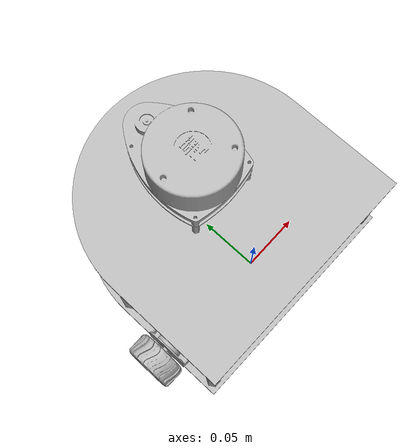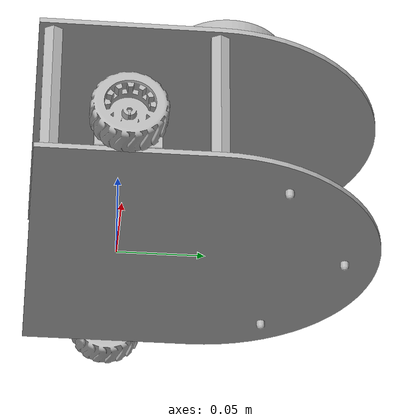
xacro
<?xml version="1.0" ?>
<robot name="difdrv1" xmlns:xacro="http://www.ros.org/wiki/xacro">

<xacro:include filename="$(find difdrv1_description)/urdf/materials.xacro" />
<xacro:include filename="$(find difdrv1_description)/urdf/difdrv1.trans" />
<xacro:include filename="$(find difdrv1_description)/urdf/difdrv1.gazebo" />
<link name="base_link">
  <inertial>
    <origin rpy="0 0 0" xyz="7.502486026261859e-16 0.040808268425742804 0.006491713565837926"/>
    <mass value="0.12755476015513142"/>
    <inertia ixx="0.000368" ixy="-0.0" ixz="0.0" iyy="0.000379" iyz="0.0" izz="0.000746"/>
  </inertial>
  <visual>
    <origin rpy="0 0 0" xyz="0 0 0"/>
    <geometry>
      <mesh filename="package://difdrv1_description/meshes/base_link.stl" scale="0.001 0.001 0.001"/>
    </geometry>
    <material name="silver"/>
  </visual>
  <collision>
    <origin rpy="0 0 0" xyz="0 0 0"/>
    <geometry>
      <mesh filename="package://difdrv1_description/meshes/base_link.stl" scale="0.001 0.001 0.001"/>
    </geometry>
  </collision>
</link>

<link name="stand1_1">
  <inertial>
    <origin rpy="0 0 0" xyz="-1.3877787807814457e-17 2.0816681711721685e-17 0.04000000000000001"/>
    <mass value="0.05882044717802503"/>
    <inertia ixx="3.2e-05" ixy="0.0" ixz="0.0" iyy="3.2e-05" iyz="0.0" izz="1e-06"/>
  </inertial>
  <visual>
    <origin rpy="0 0 0" xyz="0.092 0.042 -0.008"/>
    <geometry>
      <mesh filename="package://difdrv1_description/meshes/stand1_1.stl" scale="0.001 0.001 0.001"/>
    </geometry>
    <material name="silver"/>
  </visual>
  <collision>
    <origin rpy="0 0 0" xyz="0.092 0.042 -0.008"/>
    <geometry>
      <mesh filename="package://difdrv1_description/meshes/stand1_1.stl" scale="0.001 0.001 0.001"/>
    </geometry>
  </collision>
</link>

<link name="stand2_1">
  <inertial>
    <origin rpy="0 0 0" xyz="0.0 -2.7755575615628914e-17 0.04000000000000001"/>
    <mass value="0.05882044717802503"/>
    <inertia ixx="3.2e-05" ixy="0.0" ixz="0.0" iyy="3.2e-05" iyz="-0.0" izz="1e-06"/>
  </inertial>
  <visual>
    <origin rpy="0 0 0" xyz="-0.092 0.042 -0.008"/>
    <geometry>
      <mesh filename="package://difdrv1_description/meshes/stand2_1.stl" scale="0.001 0.001 0.001"/>
    </geometry>
    <material name="silver"/>
  </visual>
  <collision>
    <origin rpy="0 0 0" xyz="-0.092 0.042 -0.008"/>
    <geometry>
      <mesh filename="package://difdrv1_description/meshes/stand2_1.stl" scale="0.001 0.001 0.001"/>
    </geometry>
  </collision>
</link>

<link name="stand4_1">
  <inertial>
    <origin rpy="0 0 0" xyz="1.3877787807814457e-17 -2.7755575615628914e-17 0.04000000000000001"/>
    <mass value="0.05882044717802503"/>
    <inertia ixx="3.2e-05" ixy="-0.0" ixz="0.0" iyy="3.2e-05" iyz="0.0" izz="1e-06"/>
  </inertial>
  <visual>
    <origin rpy="0 0 0" xyz="-0.092 -0.05 -0.008"/>
    <geometry>
      <mesh filename="package://difdrv1_description/meshes/stand4_1.stl" scale="0.001 0.001 0.001"/>
    </geometry>
    <material name="silver"/>
  </visual>
  <collision>
    <origin rpy="0 0 0" xyz="-0.092 -0.05 -0.008"/>
    <geometry>
      <mesh filename="package://difdrv1_description/meshes/stand4_1.stl" scale="0.001 0.001 0.001"/>
    </geometry>
  </collision>
</link>

<link name="stand3_1">
  <inertial>
    <origin rpy="0 0 0" xyz="2.7755575615628914e-17 2.0816681711721685e-17 0.04000000000000001"/>
    <mass value="0.05882044717802503"/>
    <inertia ixx="3.2e-05" ixy="0.0" ixz="0.0" iyy="3.2e-05" iyz="0.0" izz="1e-06"/>
  </inertial>
  <visual>
    <origin rpy="0 0 0" xyz="0.092 -0.05 -0.008"/>
    <geometry>
      <mesh filename="package://difdrv1_description/meshes/stand3_1.stl" scale="0.001 0.001 0.001"/>
    </geometry>
    <material name="silver"/>
  </visual>
  <collision>
    <origin rpy="0 0 0" xyz="0.092 -0.05 -0.008"/>
    <geometry>
      <mesh filename="package://difdrv1_description/meshes/stand3_1.stl" scale="0.001 0.001 0.001"/>
    </geometry>
  </collision>
</link>

<link name="top_plate_1">
  <inertial>
    <origin rpy="0 0 0" xyz="0.10000000000000003 -0.009334985891859299 0.001500000000000029"/>
    <mass value="0.1272631810869704"/>
    <inertia ixx="0.000367" ixy="0.0" ixz="-0.0" iyy="0.000378" iyz="0.0" izz="0.000744"/>
  </inertial>
  <visual>
    <origin rpy="0 0 0" xyz="0.1 -0.05 -0.088"/>
    <geometry>
      <mesh filename="package://difdrv1_description/meshes/top_plate_1.stl" scale="0.001 0.001 0.001"/>
    </geometry>
    <material name="silver"/>
  </visual>
  <collision>
    <origin rpy="0 0 0" xyz="0.1 -0.05 -0.088"/>
    <geometry>
      <mesh filename="package://difdrv1_description/meshes/top_plate_1.stl" scale="0.001 0.001 0.001"/>
    </geometry>
  </collision>
</link>

<link name="Motor_Mount_2_1">
  <inertial>
    <origin rpy="0 0 0" xyz="-0.009510566172035759 3.4067382248537115e-07 0.007277565919577289"/>
    <mass value="0.024172386699614672"/>
    <inertia ixx="5e-06" ixy="-0.0" ixz="2e-06" iyy="6e-06" iyz="-0.0" izz="7e-06"/>
  </inertial>
  <visual>
    <origin rpy="0 0 0" xyz="0.08 -0.0 -0.008"/>
    <geometry>
      <mesh filename="package://difdrv1_description/meshes/Motor_Mount_2_1.stl" scale="0.001 0.001 0.001"/>
    </geometry>
    <material name="silver"/>
  </visual>
  <collision>
    <origin rpy="0 0 0" xyz="0.08 -0.0 -0.008"/>
    <geometry>
      <mesh filename="package://difdrv1_description/meshes/Motor_Mount_2_1.stl" scale="0.001 0.001 0.001"/>
    </geometry>
  </collision>
</link>

<link name="Motor_2_1">
  <inertial>
    <origin rpy="0 0 0" xyz="0.03251638218202085 -2.089257586379567e-16 -0.00011158449269127804"/>
    <mass value="0.20281029076089996"/>
    <inertia ixx="1.3e-05" ixy="0.0" ixz="1e-06" iyy="7.9e-05" iyz="-0.0" izz="7.9e-05"/>
  </inertial>
  <visual>
    <origin rpy="0 0 0" xyz="0.099717 -0.000456 -0.021456"/>
    <geometry>
      <mesh filename="package://difdrv1_description/meshes/Motor_2_1.stl" scale="0.001 0.001 0.001"/>
    </geometry>
    <material name="silver"/>
  </visual>
  <collision>
    <origin rpy="0 0 0" xyz="0.099717 -0.000456 -0.021456"/>
    <geometry>
      <mesh filename="package://difdrv1_description/meshes/Motor_2_1.stl" scale="0.001 0.001 0.001"/>
    </geometry>
  </collision>
</link>

<link name="Motor1_1">
  <inertial>
    <origin rpy="0 0 0" xyz="-0.0325163821820208 3.2542328207152416e-16 -0.00011158449269127804"/>
    <mass value="0.20281029076089996"/>
    <inertia ixx="1.3e-05" ixy="0.0" ixz="-1e-06" iyy="7.9e-05" iyz="0.0" izz="7.9e-05"/>
  </inertial>
  <visual>
    <origin rpy="0 0 0" xyz="-0.099717 0.000456 -0.021456"/>
    <geometry>
      <mesh filename="package://difdrv1_description/meshes/Motor1_1.stl" scale="0.001 0.001 0.001"/>
    </geometry>
    <material name="silver"/>
  </visual>
  <collision>
    <origin rpy="0 0 0" xyz="-0.099717 0.000456 -0.021456"/>
    <geometry>
      <mesh filename="package://difdrv1_description/meshes/Motor1_1.stl" scale="0.001 0.001 0.001"/>
    </geometry>
  </collision>
</link>

<link name="wheel_1_1">
  <inertial>
    <origin rpy="0 0 0" xyz="-0.0023664114803909064 7.404858714046836e-10 6.14458227954362e-06"/>
    <mass value="0.02002160135498839"/>
    <inertia ixx="5e-06" ixy="0.0" ixz="0.0" iyy="3e-06" iyz="0.0" izz="3e-06"/>
  </inertial>
  <visual>
    <origin rpy="0 0 0" xyz="-0.114668 0.000456 -0.02176"/>
    <geometry>
      <mesh filename="package://difdrv1_description/meshes/wheel_1_1.stl" scale="0.001 0.001 0.001"/>
    </geometry>
    <material name="silver"/>
  </visual>
  <collision>
    <origin rpy="0 0 0" xyz="-0.114668 0.000456 -0.02176"/>
    <geometry>
      <mesh filename="package://difdrv1_description/meshes/wheel_1_1.stl" scale="0.001 0.001 0.001"/>
    </geometry>
  </collision>
</link>

<link name="wheel_2_1">
  <inertial>
    <origin rpy="0 0 0" xyz="0.0023664114803910175 -7.404858083583273e-10 6.1445822795783145e-06"/>
    <mass value="0.02002160135498839"/>
    <inertia ixx="5e-06" ixy="0.0" ixz="-0.0" iyy="3e-06" iyz="-0.0" izz="3e-06"/>
  </inertial>
  <visual>
    <origin rpy="0 0 0" xyz="0.114668 -0.000456 -0.021456"/>
    <geometry>
      <mesh filename="package://difdrv1_description/meshes/wheel_2_1.stl" scale="0.001 0.001 0.001"/>
    </geometry>
    <material name="silver"/>
  </visual>
  <collision>
    <origin rpy="0 0 0" xyz="0.114668 -0.000456 -0.021456"/>
    <geometry>
      <mesh filename="package://difdrv1_description/meshes/wheel_2_1.stl" scale="0.001 0.001 0.001"/>
    </geometry>
  </collision>
</link>

<link name="lidar_v1_1">
  <inertial>
    <origin rpy="0 0 0" xyz="0.02009192633575899 -0.035233381580401416 0.035268184247223056"/>
    <mass value="1.3392964352221826"/>
    <inertia ixx="0.000967" ixy="1e-06" ixz="3e-06" iyy="0.000619" iyz="0.000159" izz="0.001105"/>
  </inertial>
  <visual>
    <origin rpy="0 0 0" xyz="0.02 -0.105 -0.091"/>
    <geometry>
      <mesh filename="package://difdrv1_description/meshes/lidar_v1_1.stl" scale="0.001 0.001 0.001"/>
    </geometry>
    <material name="silver"/>
  </visual>
  <collision>
    <origin rpy="0 0 0" xyz="0.02 -0.105 -0.091"/>
    <geometry>
      <mesh filename="package://difdrv1_description/meshes/lidar_v1_1.stl" scale="0.001 0.001 0.001"/>
    </geometry>
  </collision>
</link>

<link name="Motor_Mount1_1">
  <inertial>
    <origin rpy="0 0 0" xyz="0.009510566172035842 -3.406738224676076e-07 0.007277565919577206"/>
    <mass value="0.024172386699614672"/>
    <inertia ixx="5e-06" ixy="-0.0" ixz="-2e-06" iyy="6e-06" iyz="0.0" izz="7e-06"/>
  </inertial>
  <visual>
    <origin rpy="0 0 0" xyz="-0.08 0.0 -0.008"/>
    <geometry>
      <mesh filename="package://difdrv1_description/meshes/Motor_Mount1_1.stl" scale="0.001 0.001 0.001"/>
    </geometry>
    <material name="silver"/>
  </visual>
  <collision>
    <origin rpy="0 0 0" xyz="-0.08 0.0 -0.008"/>
    <geometry>
      <mesh filename="package://difdrv1_description/meshes/Motor_Mount1_1.stl" scale="0.001 0.001 0.001"/>
    </geometry>
  </collision>
</link>

<joint name="Rigid1" type="fixed">
  <origin rpy="0 0 0" xyz="-0.092 -0.042 0.008"/>
  <parent link="base_link"/>
  <child link="stand1_1"/>
</joint>

<joint name="Rigid2" type="fixed">
  <origin rpy="0 0 0" xyz="0.092 -0.042 0.008"/>
  <parent link="base_link"/>
  <child link="stand2_1"/>
</joint>

<joint name="Rigid3" type="fixed">
  <origin rpy="0 0 0" xyz="0.092 0.05 0.008"/>
  <parent link="base_link"/>
  <child link="stand4_1"/>
</joint>

<joint name="Rigid4" type="fixed">
  <origin rpy="0 0 0" xyz="-0.092 0.05 0.008"/>
  <parent link="base_link"/>
  <child link="stand3_1"/>
</joint>

<joint name="Rigid5" type="fixed">
  <origin rpy="0 0 0" xyz="-0.008 0.0 0.08"/>
  <parent link="stand3_1"/>
  <child link="top_plate_1"/>
</joint>

<joint name="Rigid7" type="fixed">
  <origin rpy="0 0 0" xyz="-0.08 0.0 0.008"/>
  <parent link="base_link"/>
  <child link="Motor_Mount_2_1"/>
</joint>

<joint name="Rigid8" type="fixed">
  <origin rpy="0 0 0" xyz="-0.019717 0.000456 0.013456"/>
  <parent link="Motor_Mount_2_1"/>
  <child link="Motor_2_1"/>
</joint>

<joint name="Rigid9" type="fixed">
  <origin rpy="0 0 0" xyz="0.019717 -0.000456 0.013456"/>
  <parent link="Motor_Mount1_1"/>
  <child link="Motor1_1"/>
</joint>

<joint name="Rev10" type="continuous">
  <origin rpy="0 0 0" xyz="0.014951 0.0 0.000304"/>
  <parent link="Motor1_1"/>
  <child link="wheel_1_1"/>
  <axis xyz="1.0 -0.0 -0.0"/>
</joint>

<joint name="Rev11" type="continuous">
  <origin rpy="0 0 0" xyz="-0.014951 0.0 0.0"/>
  <parent link="Motor_2_1"/>
  <child link="wheel_2_1"/>
  <axis xyz="-1.0 0.0 0.0"/>
</joint>

<joint name="Rigid12" type="fixed">
  <origin rpy="0 0 0" xyz="0.08 0.055 0.003"/>
  <parent link="top_plate_1"/>
  <child link="lidar_v1_1"/>
</joint>

<joint name="Rigid13" type="fixed">
  <origin rpy="0 0 0" xyz="0.08 0.0 0.008"/>
  <parent link="base_link"/>
  <child link="Motor_Mount1_1"/>
</joint>

</robot>

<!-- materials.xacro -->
<robot name="difdrv1" xmlns:xacro="http://www.ros.org/wiki/xacro" >

<material name="silver">
  <color rgba="0.700 0.700 0.700 1.000"/>
</material>

</robot>

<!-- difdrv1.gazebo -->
<robot name="difdrv1" xmlns:xacro="http://www.ros.org/wiki/xacro" >

<xacro:property name="body_color" value="Gazebo/Silver" />

<gazebo>
  <plugin filename="libgazebo_ros_control.so" name="control"/>
</gazebo>
<gazebo reference="base_link">
  <material>${body_color}</material>
  <mu1>0.2</mu1>
  <mu2>0.2</mu2>
  <selfCollide>true</selfCollide>
  <gravity>true</gravity>
</gazebo>

<gazebo reference="stand1_1">
  <material>${body_color}</material>
  <mu1>0.2</mu1>
  <mu2>0.2</mu2>
  <selfCollide>true</selfCollide>
</gazebo>

<gazebo reference="stand2_1">
  <material>${body_color}</material>
  <mu1>0.2</mu1>
  <mu2>0.2</mu2>
  <selfCollide>true</selfCollide>
</gazebo>

<gazebo reference="stand4_1">
  <material>${body_color}</material>
  <mu1>0.2</mu1>
  <mu2>0.2</mu2>
  <selfCollide>true</selfCollide>
</gazebo>

<gazebo reference="stand3_1">
  <material>${body_color}</material>
  <mu1>0.2</mu1>
  <mu2>0.2</mu2>
  <selfCollide>true</selfCollide>
</gazebo>

<gazebo reference="top_plate_1">
  <material>${body_color}</material>
  <mu1>0.2</mu1>
  <mu2>0.2</mu2>
  <selfCollide>true</selfCollide>
</gazebo>

<gazebo reference="Motor_Mount_2_1">
  <material>${body_color}</material>
  <mu1>0.2</mu1>
  <mu2>0.2</mu2>
  <selfCollide>true</selfCollide>
</gazebo>

<gazebo reference="Motor_2_1">
  <material>${body_color}</material>
  <mu1>0.2</mu1>
  <mu2>0.2</mu2>
  <selfCollide>true</selfCollide>
</gazebo>

<gazebo reference="Motor1_1">
  <material>${body_color}</material>
  <mu1>0.2</mu1>
  <mu2>0.2</mu2>
  <selfCollide>true</selfCollide>
</gazebo>

<gazebo reference="wheel_1_1">
  <material>${body_color}</material>
  <mu1>0.2</mu1>
  <mu2>0.2</mu2>
  <selfCollide>true</selfCollide>
</gazebo>

<gazebo reference="wheel_2_1">
  <material>${body_color}</material>
  <mu1>0.2</mu1>
  <mu2>0.2</mu2>
  <selfCollide>true</selfCollide>
</gazebo>

<gazebo reference="lidar_v1_1">
  <material>${body_color}</material>
  <mu1>0.2</mu1>
  <mu2>0.2</mu2>
  <selfCollide>true</selfCollide>
</gazebo>

<gazebo reference="Motor_Mount1_1">
  <material>${body_color}</material>
  <mu1>0.2</mu1>
  <mu2>0.2</mu2>
  <selfCollide>true</selfCollide>
</gazebo>

</robot>
